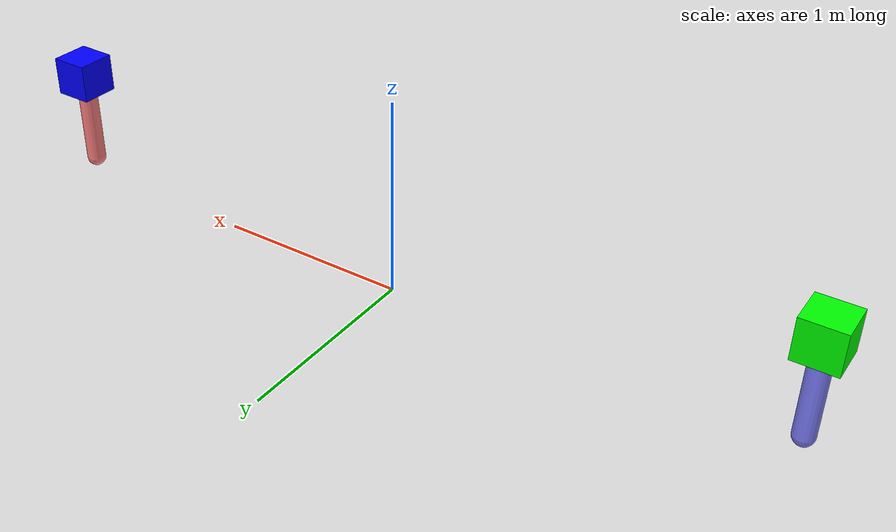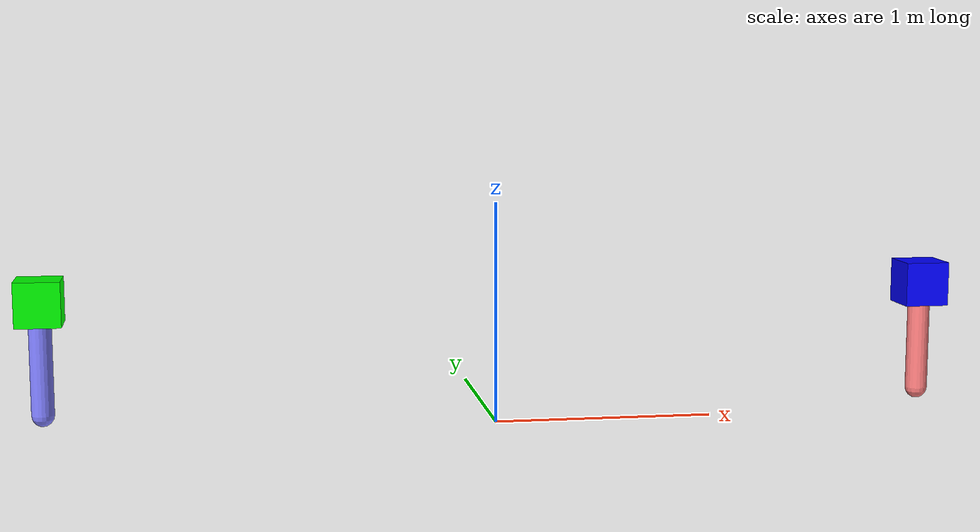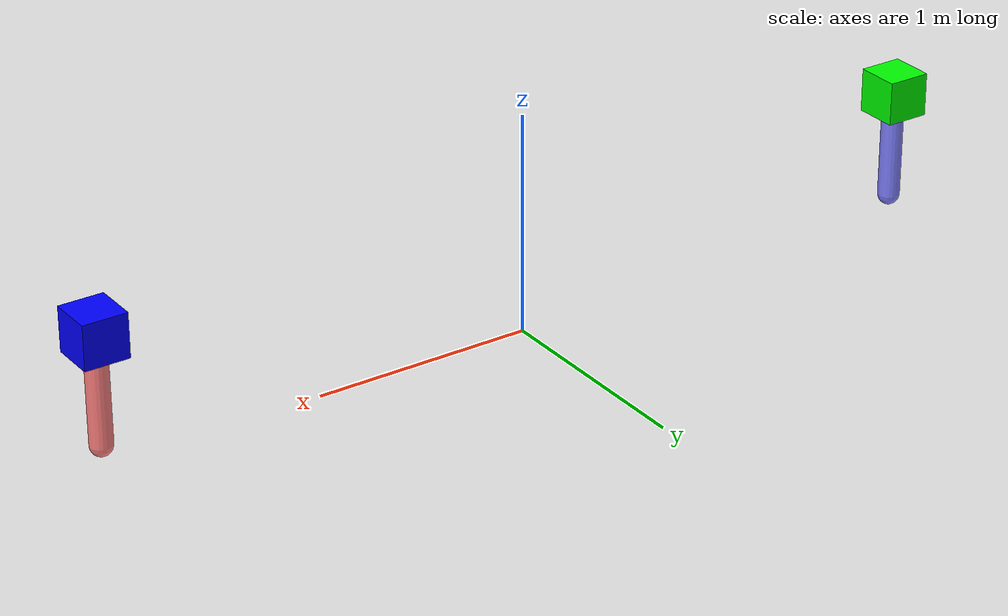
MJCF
<mujoco>
  <option gravity="0 0 -9.81" />
  <worldbody>
    <body name="object_3" pos="-2 0 0.1">
      <geom type="capsule" fromto="0 0 0 0 0 0.4" size="0.05" rgba="0.5 0.5 1 1" />
    </body>
    <body name="object_1" pos="-2 0 0.6">
      <geom type="box" size="0.1 0.1 0.1" density="1" rgba="0 1 0 1" />
      <joint type="slide" axis="0 0 1" name="object_1_joint" />
    </body>
    <body name="object_4" pos="2 0 0.1">
      <geom type="capsule" fromto="0 0 0 0 0 0.4" size="0.05" rgba="1 0.5 0.5 1" />
    </body>
    <body name="object_2" pos="2 0 0.6">
      <geom type="box" size="0.1 0.1 0.1" density="1" rgba="0 0 1 1" />
      <joint type="slide" axis="0 0 1" name="object_2_joint" />
    </body>
  </worldbody>
</mujoco>
